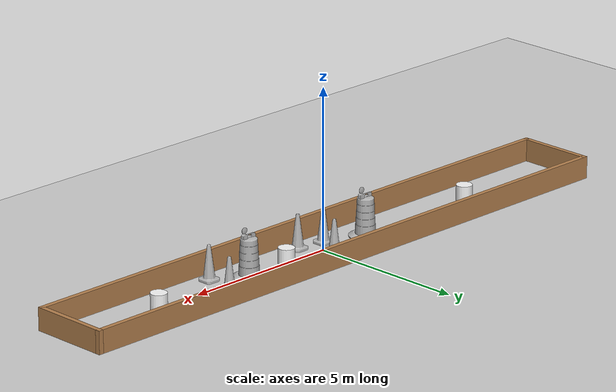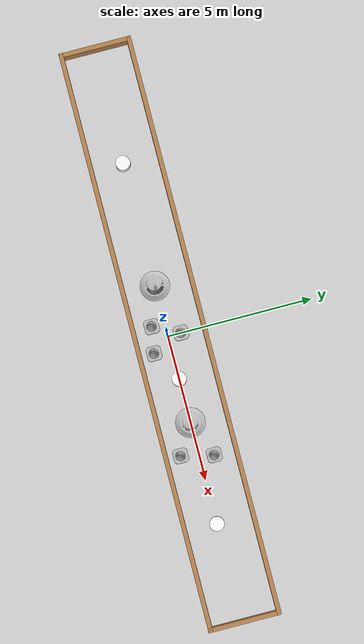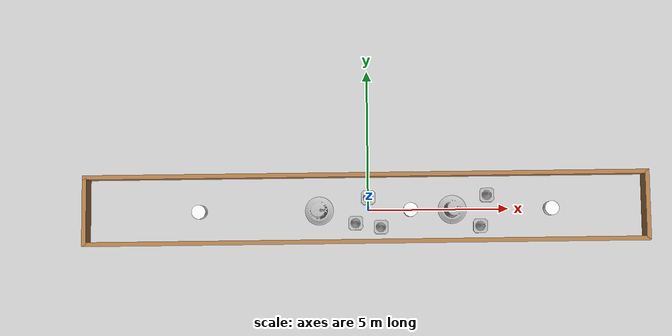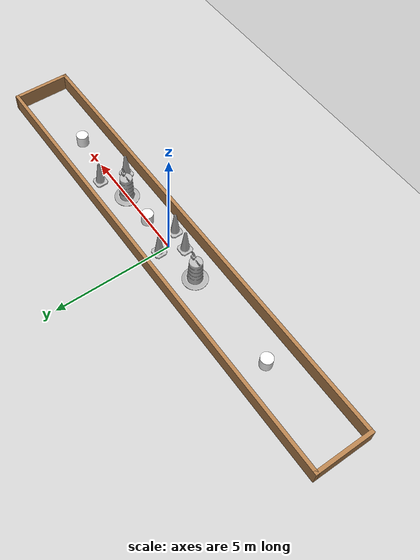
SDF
<sdf version="1.7">
 <world name="default">
  <light name="sun" type="directional">
   <pose>0 0 10 0 -0 0</pose>
   <diffuse>0.8 0.8 0.8 1</diffuse>
   <specular>0.2 0.2 0.2 1</specular>
   <attenuation>
    <range>1000</range>
    <constant>0.9</constant>
    <linear>0.01</linear>
    <quadratic>0.001</quadratic>
   </attenuation>
   <direction>-0.5 0.1 -0.9</direction>
   <spot><inner_angle>0</inner_angle><outer_angle>0</outer_angle><falloff>0</falloff></spot>
  </light>
  <model name="ground_plane">
   <static>1</static>
   <link name="link">
    <collision name="collision">
     <geometry><plane><normal>0 0 1</normal><size>100 100</size></plane></geometry>
     <surface>
      <contact><collide_bitmask>65535</collide_bitmask></contact>
      <friction><ode><mu>100</mu><mu2>50</mu2></ode></friction>
     </surface>
    </collision>
    <visual name="visual">
     <cast_shadows>0</cast_shadows>
     <geometry><plane><normal>0 0 1</normal><size>100 100</size></plane></geometry>
     <material>
      <script><uri>file://media/materials/scripts/gazebo.material</uri><name>Gazebo/Grey</name></script>
     </material>
    </visual>
   </link>
  </model>
  <gravity>0 0 -9.8</gravity>
  <magnetic_field>6e-06 2.3e-05 -4.2e-05</magnetic_field>
  <atmosphere type="adiabatic"/>
  <physics type="ode">
   <max_step_size>0.001</max_step_size>
   <real_time_factor>1</real_time_factor>
   <real_time_update_rate>1000</real_time_update_rate>
  </physics>
  <scene><ambient>0.4 0.4 0.4 1</ambient><background>0.7 0.7 0.7 1</background><shadows>1</shadows></scene>
  <audio><device>default</device></audio>
  <spherical_coordinates>
   <surface_model>EARTH_WGS84</surface_model>
   <latitude_deg>0</latitude_deg>
   <longitude_deg>0</longitude_deg>
   <elevation>0</elevation>
   <heading_deg>0</heading_deg>
  </spherical_coordinates>
  <model name="Construction Cone">
   <link name="link">
    <collision name="collision">
     <geometry>
      <mesh><scale>10 10 10</scale><uri>model://construction_cone/meshes/construction_cone.dae</uri></mesh>
     </geometry>
    </collision>
    <visual name="visual">
     <geometry>
      <mesh><scale>10 10 10</scale><uri>model://construction_cone/meshes/construction_cone.dae</uri></mesh>
     </geometry>
    </visual>
    <inertial>
     <inertia><ixx>1</ixx><ixy>0</ixy><ixz>0</ixz><iyy>1</iyy><iyz>0</iyz><izz>1</izz></inertia>
     <mass>1</mass>
    </inertial>
   </link>
   <pose>-0 0.45 -0 0 -0 0.012296</pose>
  </model>
  <model name="Construction Cone_0">
   <link name="link">
    <collision name="collision">
     <geometry>
      <mesh><scale>10 10 10</scale><uri>model://construction_cone/meshes/construction_cone.dae</uri></mesh>
     </geometry>
    </collision>
    <visual name="visual">
     <geometry>
      <mesh><scale>10 10 10</scale><uri>model://construction_cone/meshes/construction_cone.dae</uri></mesh>
     </geometry>
    </visual>
    <inertial>
     <inertia><ixx>1</ixx><ixy>0</ixy><ixz>0</ixz><iyy>1</iyy><iyz>0</iyz><izz>1</izz></inertia>
     <mass>1</mass>
    </inertial>
   </link>
   <pose>0.45 -0.6 -6e-06 -4e-06 1e-06 0</pose>
  </model>
  <model name="Construction Cone_1">
   <link name="link">
    <collision name="collision">
     <geometry>
      <mesh><scale>10 10 10</scale><uri>model://construction_cone/meshes/construction_cone.dae</uri></mesh>
     </geometry>
    </collision>
    <visual name="visual">
     <geometry>
      <mesh><scale>10 10 10</scale><uri>model://construction_cone/meshes/construction_cone.dae</uri></mesh>
     </geometry>
    </visual>
    <inertial>
     <inertia><ixx>1</ixx><ixy>0</ixy><ixz>0</ixz><iyy>1</iyy><iyz>0</iyz><izz>1</izz></inertia>
     <mass>1</mass>
    </inertial>
   </link>
   <pose>-0.45 -0.45 -1e-05 0 -0 0</pose>
  </model>
  <model name="Construction Barrel">
   <link name="link">
    <inertial>
     <pose>0 0 0.4 0 -0 0</pose>
     <mass>500</mass>
     <inertia><ixx>51.2096</ixx><iyy>51.2096</iyy><izz>25</izz><ixy>0</ixy><ixz>0</ixz><iyz>0</iyz></inertia>
    </inertial>
    <collision name="collision">
     <geometry><mesh><uri>model://construction_barrel/meshes/construction_barrel.dae</uri></mesh></geometry>
    </collision>
    <visual name="visual">
     <geometry><mesh><uri>model://construction_barrel/meshes/construction_barrel.dae</uri></mesh></geometry>
    </visual>
   </link>
   <pose>-1.75004 -3.8e-05 -0 0 -0 -3.7e-05</pose>
  </model>
  <model name="Construction Barrel_0">
   <link name="link">
    <inertial>
     <pose>0 0 0.4 0 -0 0</pose>
     <mass>500</mass>
     <inertia><ixx>51.2096</ixx><iyy>51.2096</iyy><izz>25</izz><ixy>0</ixy><ixz>0</ixz><iyz>0</iyz></inertia>
    </inertial>
    <collision name="collision">
     <geometry><mesh><uri>model://construction_barrel/meshes/construction_barrel.dae</uri></mesh></geometry>
    </collision>
    <visual name="visual">
     <geometry><mesh><uri>model://construction_barrel/meshes/construction_barrel.dae</uri></mesh></geometry>
    </visual>
   </link>
   <pose>2.99994 -3.6e-05 -0 0 -0 -3.9e-05</pose>
  </model>
  <model name="Construction Cone_2">
   <link name="link">
    <collision name="collision">
     <geometry>
      <mesh><scale>10 10 10</scale><uri>model://construction_cone/meshes/construction_cone.dae</uri></mesh>
     </geometry>
    </collision>
    <visual name="visual">
     <geometry>
      <mesh><scale>10 10 10</scale><uri>model://construction_cone/meshes/construction_cone.dae</uri></mesh>
     </geometry>
    </visual>
    <inertial>
     <inertia><ixx>1</ixx><ixy>0</ixy><ixz>0</ixz><iyy>1</iyy><iyz>0</iyz><izz>1</izz></inertia>
     <mass>1</mass>
    </inertial>
   </link>
   <pose>4.25 0.5 -1e-05 -1e-06 0 0</pose>
  </model>
  <model name="Construction Cone_3">
   <link name="link">
    <collision name="collision">
     <geometry>
      <mesh><scale>10 10 10</scale><uri>model://construction_cone/meshes/construction_cone.dae</uri></mesh>
     </geometry>
    </collision>
    <visual name="visual">
     <geometry>
      <mesh><scale>10 10 10</scale><uri>model://construction_cone/meshes/construction_cone.dae</uri></mesh>
     </geometry>
    </visual>
    <inertial>
     <inertia><ixx>1</ixx><ixy>0</ixy><ixz>0</ixz><iyy>1</iyy><iyz>0</iyz><izz>1</izz></inertia>
     <mass>1</mass>
    </inertial>
   </link>
   <pose>4 -0.6 -1e-05 0 -0 0</pose>
  </model>
  <model name="moving_white_cylinder">
   <link name="link">
    <inertial>
     <mass>1</mass>
     <inertia><ixx>0.145833</ixx><ixy>0</ixy><ixz>0</ixz><iyy>0.145833</iyy><iyz>0</iyz><izz>0.125</izz></inertia>
    </inertial>
    <visual name="visual">
     <geometry><cylinder><radius>0.25</radius><length>0.5</length></cylinder></geometry>
     <material>
      <script><name>Gazebo/Pedestrian</name><uri>file://media/materials/scripts/gazebo.material</uri></script>
      <shader type="pixel"><normal_map>__default__</normal_map></shader>
      <ambient>0.98 0.98 0.98 1</ambient>
      <diffuse>0.976 0.976 0.976 1</diffuse>
      <specular>0.976 0.976 0.976 1</specular>
      <emissive>0.976 0.976 0.976 1</emissive>
     </material>
     <pose>0 0 -0.25 0 -0 0</pose>
    </visual>
    <collision name="collision">
     <pose>0 0 -0.25 0 -0 0</pose>
     <geometry><cylinder><radius>0.25</radius><length>0.5</length></cylinder></geometry>
     <surface>
      <friction>
       <ode><mu>1</mu><mu2>1</mu2><fdir1>0 0 0</fdir1><slip1>0</slip1><slip2>0</slip2></ode>
       <torsional>
        <coefficient>1</coefficient>
        <patch_radius>0</patch_radius>
        <surface_radius>0</surface_radius>
        <use_patch_radius>1</use_patch_radius>
        <ode><slip>0</slip></ode>
       </torsional>
      </friction>
      <bounce><restitution_coefficient>0</restitution_coefficient><threshold>1e+06</threshold></bounce>
      <contact>
       <collide_without_contact>0</collide_without_contact>
       <collide_without_contact_bitmask>1</collide_without_contact_bitmask>
       <collide_bitmask>1</collide_bitmask>
       <ode>
        <soft_cfm>0</soft_cfm>
        <soft_erp>0.2</soft_erp>
        <kp>1e+13</kp>
        <kd>1</kd>
        <max_vel>0.01</max_vel>
        <min_depth>0</min_depth>
       </ode>
       <bullet>
        <split_impulse>1</split_impulse>
        <split_impulse_penetration_threshold>-0.01</split_impulse_penetration_threshold>
        <soft_cfm>0</soft_cfm>
        <soft_erp>0.2</soft_erp>
        <kp>1e+13</kp>
        <kd>1</kd>
       </bullet>
      </contact>
     </surface>
    </collision>
   </link>
   <static>0</static>
   <pose>1.5 0 0.499998 -1e-06 1e-06 -1e-06</pose>
   <plugin name="dyn_obst_plugin" filename="libdyn_obst_plugin.so">
    <axis>y</axis>
    <amplitude>0.75</amplitude>
    <frequency>0.75</frequency>
   </plugin>
  </model>
  <model name="moving_white_cylinder_0">
   <link name="link">
    <inertial>
     <mass>1</mass>
     <inertia><ixx>0.145833</ixx><ixy>0</ixy><ixz>0</ixz><iyy>0.145833</iyy><iyz>0</iyz><izz>0.125</izz></inertia>
    </inertial>
    <visual name="visual">
     <geometry><cylinder><radius>0.25</radius><length>0.5</length></cylinder></geometry>
     <material>
      <script><name>Gazebo/Pedestrian</name><uri>file://media/materials/scripts/gazebo.material</uri></script>
      <shader type="pixel"><normal_map>__default__</normal_map></shader>
      <ambient>0.98 0.98 0.98 1</ambient>
      <diffuse>0.976 0.976 0.976 1</diffuse>
      <specular>0.976 0.976 0.976 1</specular>
      <emissive>0.976 0.976 0.976 1</emissive>
     </material>
     <pose>0 0 -0.25 0 -0 0</pose>
    </visual>
    <collision name="collision">
     <pose>0 0 -0.25 0 -0 0</pose>
     <geometry><cylinder><radius>0.25</radius><length>0.5</length></cylinder></geometry>
     <surface>
      <friction>
       <ode><mu>1</mu><mu2>1</mu2><fdir1>0 0 0</fdir1><slip1>0</slip1><slip2>0</slip2></ode>
       <torsional>
        <coefficient>1</coefficient>
        <patch_radius>0</patch_radius>
        <surface_radius>0</surface_radius>
        <use_patch_radius>1</use_patch_radius>
        <ode><slip>0</slip></ode>
       </torsional>
      </friction>
      <bounce><restitution_coefficient>0</restitution_coefficient><threshold>1e+06</threshold></bounce>
      <contact>
       <collide_without_contact>0</collide_without_contact>
       <collide_without_contact_bitmask>1</collide_without_contact_bitmask>
       <collide_bitmask>1</collide_bitmask>
       <ode>
        <soft_cfm>0</soft_cfm>
        <soft_erp>0.2</soft_erp>
        <kp>1e+13</kp>
        <kd>1</kd>
        <max_vel>0.01</max_vel>
        <min_depth>0</min_depth>
       </ode>
       <bullet>
        <split_impulse>1</split_impulse>
        <split_impulse_penetration_threshold>-0.01</split_impulse_penetration_threshold>
        <soft_cfm>0</soft_cfm>
        <soft_erp>0.2</soft_erp>
        <kp>1e+13</kp>
        <kd>1</kd>
       </bullet>
      </contact>
     </surface>
    </collision>
   </link>
   <static>0</static>
   <pose>6.5 -0 0.499992 0 -0 0</pose>
   <plugin name="dyn_obst_plugin" filename="libdyn_obst_plugin.so">
    <axis>y</axis>
    <angle>36.8</angle>
    <amplitude>0.75</amplitude>
    <frequency>-0.25</frequency>
   </plugin>
  </model>
  <model name="moving_white_cylinder_1">
   <link name="link">
    <inertial>
     <mass>1</mass>
     <inertia><ixx>0.145833</ixx><ixy>0</ixy><ixz>0</ixz><iyy>0.145833</iyy><iyz>0</iyz><izz>0.125</izz></inertia>
    </inertial>
    <visual name="visual">
     <geometry><cylinder><radius>0.25</radius><length>0.5</length></cylinder></geometry>
     <material>
      <script><name>Gazebo/Pedestrian</name><uri>file://media/materials/scripts/gazebo.material</uri></script>
      <shader type="pixel"><normal_map>__default__</normal_map></shader>
      <ambient>0.98 0.98 0.98 1</ambient>
      <diffuse>0.976 0.976 0.976 1</diffuse>
      <specular>0.976 0.976 0.976 1</specular>
      <emissive>0.976 0.976 0.976 1</emissive>
     </material>
     <pose>0 0 -0.25 0 -0 0</pose>
    </visual>
    <collision name="collision">
     <pose>0 0 -0.25 0 -0 0</pose>
     <geometry><cylinder><radius>0.25</radius><length>0.5</length></cylinder></geometry>
     <surface>
      <friction>
       <ode><mu>1</mu><mu2>1</mu2><fdir1>0 0 0</fdir1><slip1>0</slip1><slip2>0</slip2></ode>
       <torsional>
        <coefficient>1</coefficient>
        <patch_radius>0</patch_radius>
        <surface_radius>0</surface_radius>
        <use_patch_radius>1</use_patch_radius>
        <ode><slip>0</slip></ode>
       </torsional>
      </friction>
      <bounce><restitution_coefficient>0</restitution_coefficient><threshold>1e+06</threshold></bounce>
      <contact>
       <collide_without_contact>0</collide_without_contact>
       <collide_without_contact_bitmask>1</collide_without_contact_bitmask>
       <collide_bitmask>1</collide_bitmask>
       <ode>
        <soft_cfm>0</soft_cfm>
        <soft_erp>0.2</soft_erp>
        <kp>1e+13</kp>
        <kd>1</kd>
        <max_vel>0.01</max_vel>
        <min_depth>0</min_depth>
       </ode>
       <bullet>
        <split_impulse>1</split_impulse>
        <split_impulse_penetration_threshold>-0.01</split_impulse_penetration_threshold>
        <soft_cfm>0</soft_cfm>
        <soft_erp>0.2</soft_erp>
        <kp>1e+13</kp>
        <kd>1</kd>
       </bullet>
      </contact>
     </surface>
    </collision>
   </link>
   <static>0</static>
   <pose>-6 0 0.499998 -1e-06 0 0</pose>
   <plugin name="dyn_obst_plugin" filename="libdyn_obst_plugin.so">
    <axis>x</axis>
    <amplitude>2.5</amplitude>
    <frequency>1.5</frequency>
   </plugin>
  </model>
  <model name="wall_corridor_one">
   <link name="Wall_4">
    <pose>-9.925 0 0 0 0 -1.5708</pose>
    <inertial>
     <mass>1</mass>
     <inertia><ixx>1</ixx><ixy>0</ixy><ixz>0</ixz><iyy>1</iyy><iyz>0</iyz><izz>1</izz></inertia>
    </inertial>
    <visual name="Wall_4_Visual">
     <pose>0 0 0.35 0 -0 0</pose>
     <geometry><box><size>2.5 0.15 0.7</size></box></geometry>
     <material>
      <script><uri>file://media/materials/scripts/gazebo.material</uri><name>Gazebo/Wood</name></script>
      <ambient>1 1 1 1</ambient>
      <shader type="pixel"><normal_map>__default__</normal_map></shader>
      <diffuse>1 1 1 1</diffuse>
      <specular>0.2 0.2 0.2 1</specular>
      <emissive>0 0 0 1</emissive>
     </material>
     <meta><layer>0</layer></meta>
    </visual>
    <collision name="Wall_4_Collision">
     <pose>0 0 0.35 0 -0 0</pose>
     <geometry><box><size>2.5 0.15 0.7</size></box></geometry>
     <surface>
      <friction>
       <ode><mu>1</mu><mu2>1</mu2><fdir1>0 0 0</fdir1><slip1>0</slip1><slip2>0</slip2></ode>
       <torsional>
        <coefficient>1</coefficient>
        <patch_radius>0</patch_radius>
        <surface_radius>0</surface_radius>
        <use_patch_radius>1</use_patch_radius>
        <ode><slip>0</slip></ode>
       </torsional>
      </friction>
      <bounce><restitution_coefficient>0</restitution_coefficient><threshold>1e+06</threshold></bounce>
      <contact>
       <collide_without_contact>0</collide_without_contact>
       <collide_without_contact_bitmask>1</collide_without_contact_bitmask>
       <collide_bitmask>1</collide_bitmask>
       <ode>
        <soft_cfm>0</soft_cfm>
        <soft_erp>0.2</soft_erp>
        <kp>1e+13</kp>
        <kd>1</kd>
        <max_vel>0.01</max_vel>
        <min_depth>0</min_depth>
       </ode>
       <bullet>
        <split_impulse>1</split_impulse>
        <split_impulse_penetration_threshold>-0.01</split_impulse_penetration_threshold>
        <soft_cfm>0</soft_cfm>
        <soft_erp>0.2</soft_erp>
        <kp>1e+13</kp>
        <kd>1</kd>
       </bullet>
      </contact>
     </surface>
    </collision>
   </link>
   <link name="Wall_5">
    <pose>0 -1.175 0 0 -0 0</pose>
    <inertial>
     <mass>1</mass>
     <inertia><ixx>1</ixx><ixy>0</ixy><ixz>0</ixz><iyy>1</iyy><iyz>0</iyz><izz>1</izz></inertia>
    </inertial>
    <visual name="Wall_5_Visual">
     <pose>0 0 0.35 0 -0 0</pose>
     <geometry><box><size>20 0.15 0.7</size></box></geometry>
     <material>
      <script><uri>file://media/materials/scripts/gazebo.material</uri><name>Gazebo/Wood</name></script>
      <ambient>1 1 1 1</ambient>
      <shader type="pixel"><normal_map>__default__</normal_map></shader>
      <diffuse>1 1 1 1</diffuse>
      <specular>0.2 0.2 0.2 1</specular>
      <emissive>0 0 0 1</emissive>
     </material>
     <meta><layer>0</layer></meta>
    </visual>
    <collision name="Wall_5_Collision">
     <pose>0 0 0.35 0 -0 0</pose>
     <geometry><box><size>20 0.15 0.7</size></box></geometry>
     <surface>
      <friction>
       <ode><mu>1</mu><mu2>1</mu2><fdir1>0 0 0</fdir1><slip1>0</slip1><slip2>0</slip2></ode>
       <torsional>
        <coefficient>1</coefficient>
        <patch_radius>0</patch_radius>
        <surface_radius>0</surface_radius>
        <use_patch_radius>1</use_patch_radius>
        <ode><slip>0</slip></ode>
       </torsional>
      </friction>
      <bounce><restitution_coefficient>0</restitution_coefficient><threshold>1e+06</threshold></bounce>
      <contact>
       <collide_without_contact>0</collide_without_contact>
       <collide_without_contact_bitmask>1</collide_without_contact_bitmask>
       <collide_bitmask>1</collide_bitmask>
       <ode>
        <soft_cfm>0</soft_cfm>
        <soft_erp>0.2</soft_erp>
        <kp>1e+13</kp>
        <kd>1</kd>
        <max_vel>0.01</max_vel>
        <min_depth>0</min_depth>
       </ode>
       <bullet>
        <split_impulse>1</split_impulse>
        <split_impulse_penetration_threshold>-0.01</split_impulse_penetration_threshold>
        <soft_cfm>0</soft_cfm>
        <soft_erp>0.2</soft_erp>
        <kp>1e+13</kp>
        <kd>1</kd>
       </bullet>
      </contact>
     </surface>
    </collision>
   </link>
   <link name="Wall_6">
    <pose>9.925 0 0 0 -0 1.5708</pose>
    <inertial>
     <mass>1</mass>
     <inertia><ixx>1</ixx><ixy>0</ixy><ixz>0</ixz><iyy>1</iyy><iyz>0</iyz><izz>1</izz></inertia>
    </inertial>
    <visual name="Wall_6_Visual">
     <pose>0 0 0.35 0 -0 0</pose>
     <geometry><box><size>2.5 0.15 0.7</size></box></geometry>
     <material>
      <script><uri>file://media/materials/scripts/gazebo.material</uri><name>Gazebo/Wood</name></script>
      <ambient>1 1 1 1</ambient>
      <shader type="pixel"><normal_map>__default__</normal_map></shader>
      <diffuse>1 1 1 1</diffuse>
      <specular>0.2 0.2 0.2 1</specular>
      <emissive>0 0 0 1</emissive>
     </material>
     <meta><layer>0</layer></meta>
    </visual>
    <collision name="Wall_6_Collision">
     <pose>0 0 0.35 0 -0 0</pose>
     <geometry><box><size>2.5 0.15 0.7</size></box></geometry>
     <surface>
      <friction>
       <ode><mu>1</mu><mu2>1</mu2><fdir1>0 0 0</fdir1><slip1>0</slip1><slip2>0</slip2></ode>
       <torsional>
        <coefficient>1</coefficient>
        <patch_radius>0</patch_radius>
        <surface_radius>0</surface_radius>
        <use_patch_radius>1</use_patch_radius>
        <ode><slip>0</slip></ode>
       </torsional>
      </friction>
      <bounce><restitution_coefficient>0</restitution_coefficient><threshold>1e+06</threshold></bounce>
      <contact>
       <collide_without_contact>0</collide_without_contact>
       <collide_without_contact_bitmask>1</collide_without_contact_bitmask>
       <collide_bitmask>1</collide_bitmask>
       <ode>
        <soft_cfm>0</soft_cfm>
        <soft_erp>0.2</soft_erp>
        <kp>1e+13</kp>
        <kd>1</kd>
        <max_vel>0.01</max_vel>
        <min_depth>0</min_depth>
       </ode>
       <bullet>
        <split_impulse>1</split_impulse>
        <split_impulse_penetration_threshold>-0.01</split_impulse_penetration_threshold>
        <soft_cfm>0</soft_cfm>
        <soft_erp>0.2</soft_erp>
        <kp>1e+13</kp>
        <kd>1</kd>
       </bullet>
      </contact>
     </surface>
    </collision>
   </link>
   <link name="Wall_7">
    <pose>0 1.175 0 0 -0 3.14159</pose>
    <inertial>
     <mass>1</mass>
     <inertia><ixx>1</ixx><ixy>0</ixy><ixz>0</ixz><iyy>1</iyy><iyz>0</iyz><izz>1</izz></inertia>
    </inertial>
    <visual name="Wall_7_Visual">
     <pose>0 0 0.35 0 -0 0</pose>
     <geometry><box><size>20 0.15 0.7</size></box></geometry>
     <material>
      <script><uri>file://media/materials/scripts/gazebo.material</uri><name>Gazebo/Wood</name></script>
      <ambient>1 1 1 1</ambient>
      <shader type="pixel"><normal_map>__default__</normal_map></shader>
      <diffuse>1 1 1 1</diffuse>
      <specular>0.2 0.2 0.2 1</specular>
      <emissive>0 0 0 1</emissive>
     </material>
     <meta><layer>0</layer></meta>
    </visual>
    <collision name="Wall_7_Collision">
     <pose>0 0 0.35 0 -0 0</pose>
     <geometry><box><size>20 0.15 0.7</size></box></geometry>
     <surface>
      <friction>
       <ode><mu>1</mu><mu2>1</mu2><fdir1>0 0 0</fdir1><slip1>0</slip1><slip2>0</slip2></ode>
       <torsional>
        <coefficient>1</coefficient>
        <patch_radius>0</patch_radius>
        <surface_radius>0</surface_radius>
        <use_patch_radius>1</use_patch_radius>
        <ode><slip>0</slip></ode>
       </torsional>
      </friction>
      <bounce><restitution_coefficient>0</restitution_coefficient><threshold>1e+06</threshold></bounce>
      <contact>
       <collide_without_contact>0</collide_without_contact>
       <collide_without_contact_bitmask>1</collide_without_contact_bitmask>
       <collide_bitmask>1</collide_bitmask>
       <ode>
        <soft_cfm>0</soft_cfm>
        <soft_erp>0.2</soft_erp>
        <kp>1e+13</kp>
        <kd>1</kd>
        <max_vel>0.01</max_vel>
        <min_depth>0</min_depth>
       </ode>
       <bullet>
        <split_impulse>1</split_impulse>
        <split_impulse_penetration_threshold>-0.01</split_impulse_penetration_threshold>
        <soft_cfm>0</soft_cfm>
        <soft_erp>0.2</soft_erp>
        <kp>1e+13</kp>
        <kd>1</kd>
       </bullet>
      </contact>
     </surface>
    </collision>
   </link>
   <static>1</static>
   <pose>-0.075 0.075 0 0 -0 0</pose>
  </model>
 </world>
</sdf>
